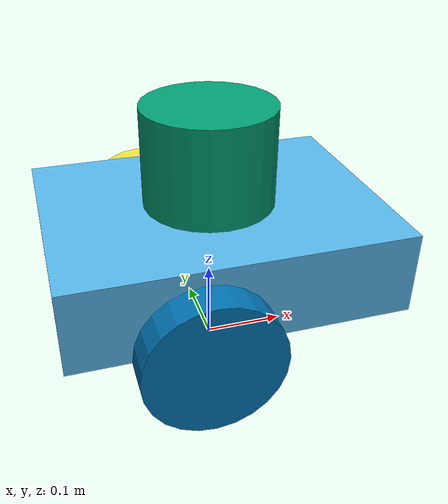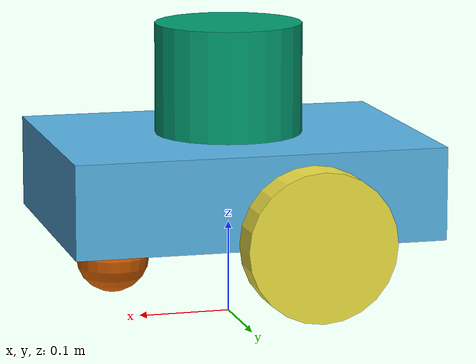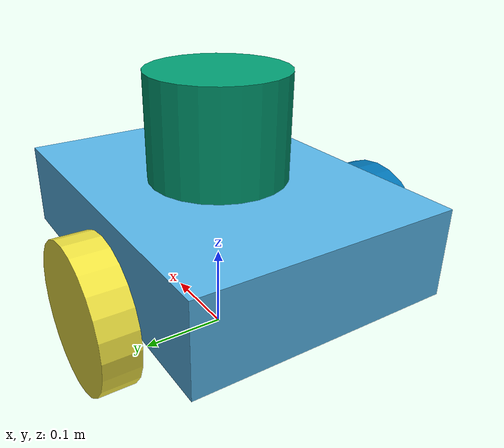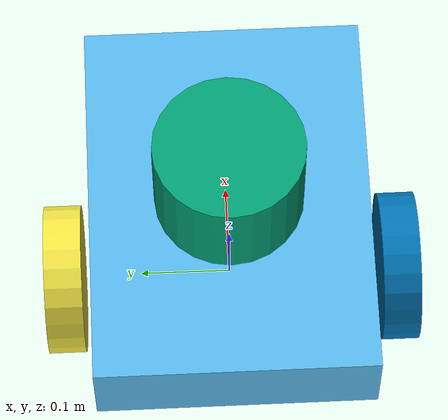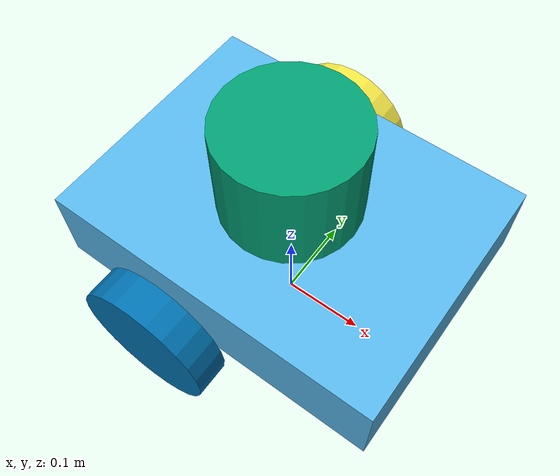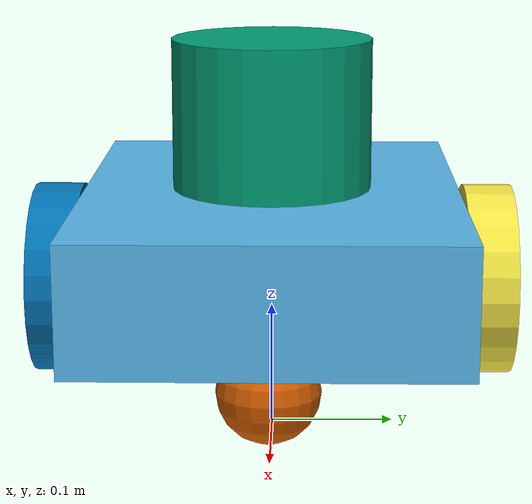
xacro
<?xml version="1.0"?>
<robot name="water_rover" xmlns:xacro="http://www.ros.org/wiki/xacro">

  <!-- Base Footprint -->
  <link name="base_footprint"/>

  <joint name="base_joint" type="fixed">
    <parent link="base_footprint"/>
    <child link="base_link"/>
    <origin xyz="0 0 0.15" rpy="0 0 0"/>
  </joint>

  <!-- Main Chassis -->
  <link name="base_link">
    <visual>
      <geometry><box size="0.4 0.3 0.1"/></geometry>
    </visual>
    <collision>
      <geometry><box size="0.4 0.3 0.1"/></geometry>
    </collision>
    <inertial>
      <mass value="3.0"/>
      <inertia ixx="0.025" ixy="0" ixz="0" iyy="0.04" iyz="0" izz="0.055"/>
    </inertial>
  </link>

  <gazebo reference="base_link">
    <visual>
      <material>
        <ambient>0.1 0.3 0.8 1</ambient>
        <diffuse>0.1 0.3 0.8 1</diffuse>
      </material>
    </visual>
  </gazebo>

  <!-- Water Tank -->
  <link name="water_tank">
    <visual>
      <geometry><cylinder radius="0.08" length="0.12"/></geometry>
    </visual>
  </link>

  <joint name="tank_joint" type="fixed">
    <parent link="base_link"/>
    <child link="water_tank"/>
    <origin xyz="0 0 0.11" rpy="0 0 0"/>
  </joint>

  <gazebo reference="water_tank">
    <visual>
      <material>
        <ambient>0.0 0.8 0.8 1</ambient>
        <diffuse>0.0 0.8 0.8 1</diffuse>
      </material>
    </visual>
  </gazebo>

  <!-- Left Wheel -->
  <link name="left_wheel">
    <visual>
      <geometry><cylinder radius="0.08" length="0.04"/></geometry>
    </visual>
    <collision>
      <geometry><cylinder radius="0.08" length="0.04"/></geometry>
    </collision>
    <inertial>
      <mass value="0.3"/>
      <inertia ixx="0.0005" ixy="0" ixz="0" iyy="0.0005" iyz="0" izz="0.0005"/>
    </inertial>
  </link>

  <joint name="left_wheel_joint" type="continuous">
    <parent link="base_link"/>
    <child link="left_wheel"/>
    <origin xyz="-0.05 0.18 -0.04" rpy="-1.5708 0 0"/>
    <axis xyz="0 0 1"/>
  </joint>

  <gazebo reference="left_wheel">
    <visual>
      <material>
        <ambient>0.1 0.1 0.1 1</ambient>
        <diffuse>0.1 0.1 0.1 1</diffuse>
      </material>
    </visual>
  </gazebo>

  <!-- Right Wheel -->
  <link name="right_wheel">
    <visual>
      <geometry><cylinder radius="0.08" length="0.04"/></geometry>
    </visual>
    <collision>
      <geometry><cylinder radius="0.08" length="0.04"/></geometry>
    </collision>
    <inertial>
      <mass value="0.3"/>
      <inertia ixx="0.0005" ixy="0" ixz="0" iyy="0.0005" iyz="0" izz="0.0005"/>
    </inertial>
  </link>

  <joint name="right_wheel_joint" type="continuous">
    <parent link="base_link"/>
    <child link="right_wheel"/>
    <origin xyz="-0.05 -0.18 -0.04" rpy="-1.5708 0 0"/>
    <axis xyz="0 0 1"/>
  </joint>

  <gazebo reference="right_wheel">
    <visual>
      <material>
        <ambient>0.1 0.1 0.1 1</ambient>
        <diffuse>0.1 0.1 0.1 1</diffuse>
      </material>
    </visual>
  </gazebo>

  <!-- Frictionless Front Caster Wheel -->
  <link name="caster_wheel">
    <visual>
      <geometry><sphere radius="0.04"/></geometry>
    </visual>
    <collision>
      <geometry><sphere radius="0.04"/></geometry>
    </collision>
    <inertial>
      <mass value="0.1"/>
      <inertia ixx="0.0001" ixy="0" ixz="0" iyy="0.0001" iyz="0" izz="0.0001"/>
    </inertial>
  </link>

  <joint name="caster_joint" type="fixed">
    <parent link="base_link"/>
    <child link="caster_wheel"/>
    <origin xyz="0.13 0 -0.08" rpy="0 0 0"/>
  </joint>

  <gazebo reference="caster_wheel">
    <mu1>0.001</mu1>
    <mu2>0.001</mu2>
    <visual>
      <material>
        <ambient>0.2 0.2 0.2 1</ambient>
        <diffuse>0.2 0.2 0.2 1</diffuse>
      </material>
    </visual>
  </gazebo>

  <!-- Diff Drive Plugin -->
  <gazebo>
    <plugin filename="gz-sim-diff-drive-system" name="gz::sim::systems::DiffDrive">
      <left_joint>left_wheel_joint</left_joint>
      <right_joint>right_wheel_joint</right_joint>
      <wheel_separation>0.36</wheel_separation>
      <wheel_radius>0.08</wheel_radius>
      <topic>/cmd_vel</topic>
      <odom_topic>/odom</odom_topic>
      <frame_id>odom</frame_id>
      <child_frame_id>base_footprint</child_frame_id>
    </plugin>
  </gazebo>

</robot>
